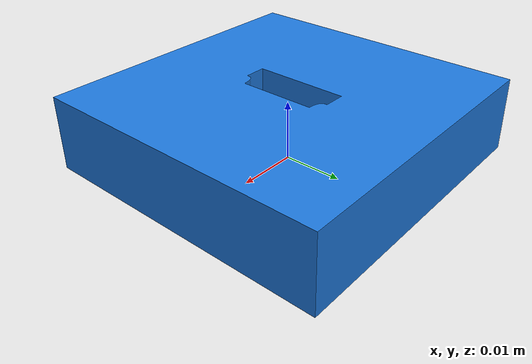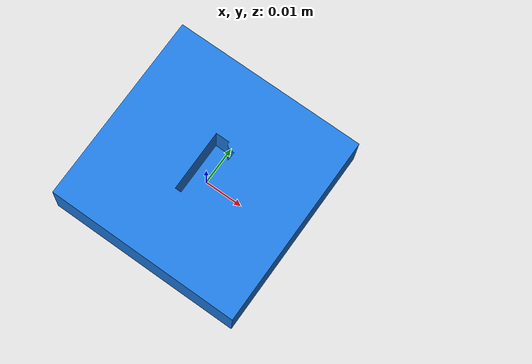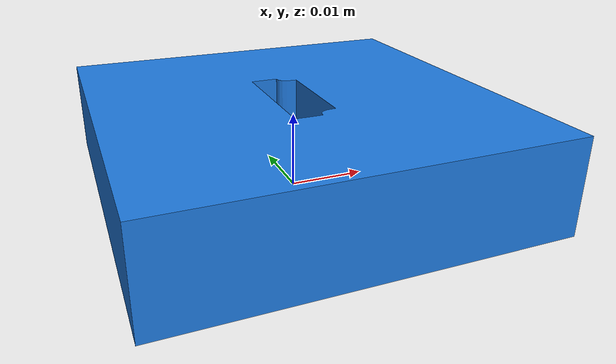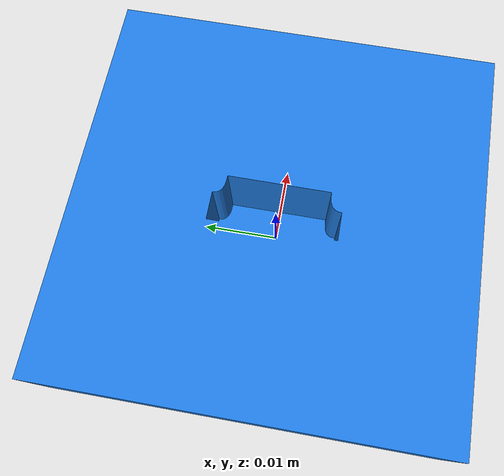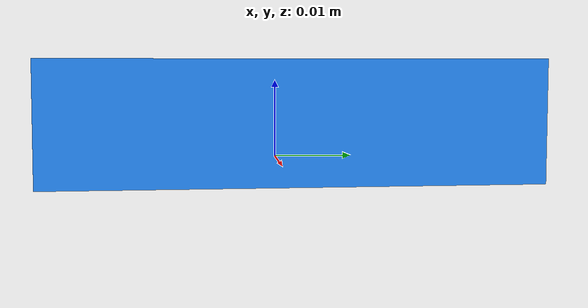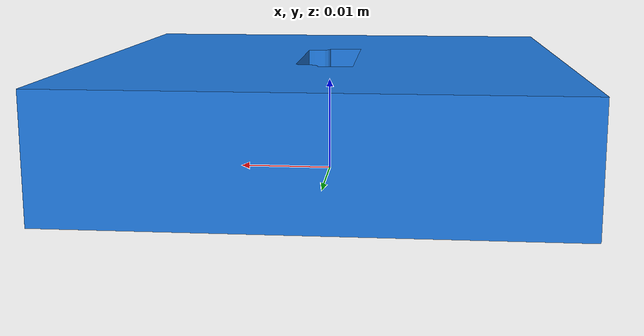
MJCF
<mujoco model="univtac_hdmi_slot">
  <compiler angle="radian"/>
  <asset>
    <mesh name="hdmi_slot_exact" file="../meshes/HDMISlot.obj"/>
    <material name="slot_blue" rgba="0.12 0.48 0.88 1" specular="0.2" shininess="0.3"/>
  </asset>
  <worldbody>
    <body name="wrapper">
      <body name="object">
        <!-- Exact source mesh for appearance. The four boxes preserve the
             receptacle opening; a single MuJoCo mesh geom would convex-hull
             and incorrectly seal this concave slot. -->
        <geom name="visual" type="mesh" mesh="hdmi_slot_exact" group="1"
              contype="0" conaffinity="0" material="slot_blue"/>
        <geom name="x_negative" type="box" pos="-0.01475 0 0.00625"
              size="0.01025 0.025 0.00625" group="0" rgba="0 0 0 0"
              friction="2.5 0.01 0.001" solref="0.005 1"/>
        <geom name="x_positive" type="box" pos="0.01475 0 0.00625"
              size="0.01025 0.025 0.00625" group="0" rgba="0 0 0 0"
              friction="2.5 0.01 0.001" solref="0.005 1"/>
        <geom name="y_negative" type="box" pos="0 -0.01675 0.00625"
              size="0.0045 0.00825 0.00625" group="0" rgba="0 0 0 0"
              friction="2.5 0.01 0.001" solref="0.005 1"/>
        <geom name="y_positive" type="box" pos="0 0.01675 0.00625"
              size="0.0045 0.00825 0.00625" group="0" rgba="0 0 0 0"
              friction="2.5 0.01 0.001" solref="0.005 1"/>
        <geom name="hole_floor" type="box" pos="0 0 0.0005"
              size="0.0045 0.0085 0.0005" group="0" rgba="0 0 0 0"
              friction="2.5 0.01 0.001" solref="0.005 1"/>
        <geom name="retention_y_negative" type="box" pos="0 -0.0078 0.01075"
              size="0.0045 0.0003 0.00125" group="0" rgba="0 0 0 0"
              friction="6.0 0.02 0.001" solref="0.005 1" solimp="0.9 0.98 0.001"/>
        <geom name="retention_y_positive" type="box" pos="0 0.0078 0.01075"
              size="0.0045 0.0003 0.00125" group="0" rgba="0 0 0 0"
              friction="6.0 0.02 0.001" solref="0.005 1" solimp="0.9 0.98 0.001"/>
        <site name="bottom" pos="0 0 0" size="0.001" rgba="0 0 0 0"/>
        <site name="top" pos="0 0 0.0125" size="0.001" rgba="0 0 0 0"/>
        <site name="horizontal_radius" pos="0.025 0 0" size="0.001" rgba="0 0 0 0"/>
      </body>
    </body>
  </worldbody>
</mujoco>
